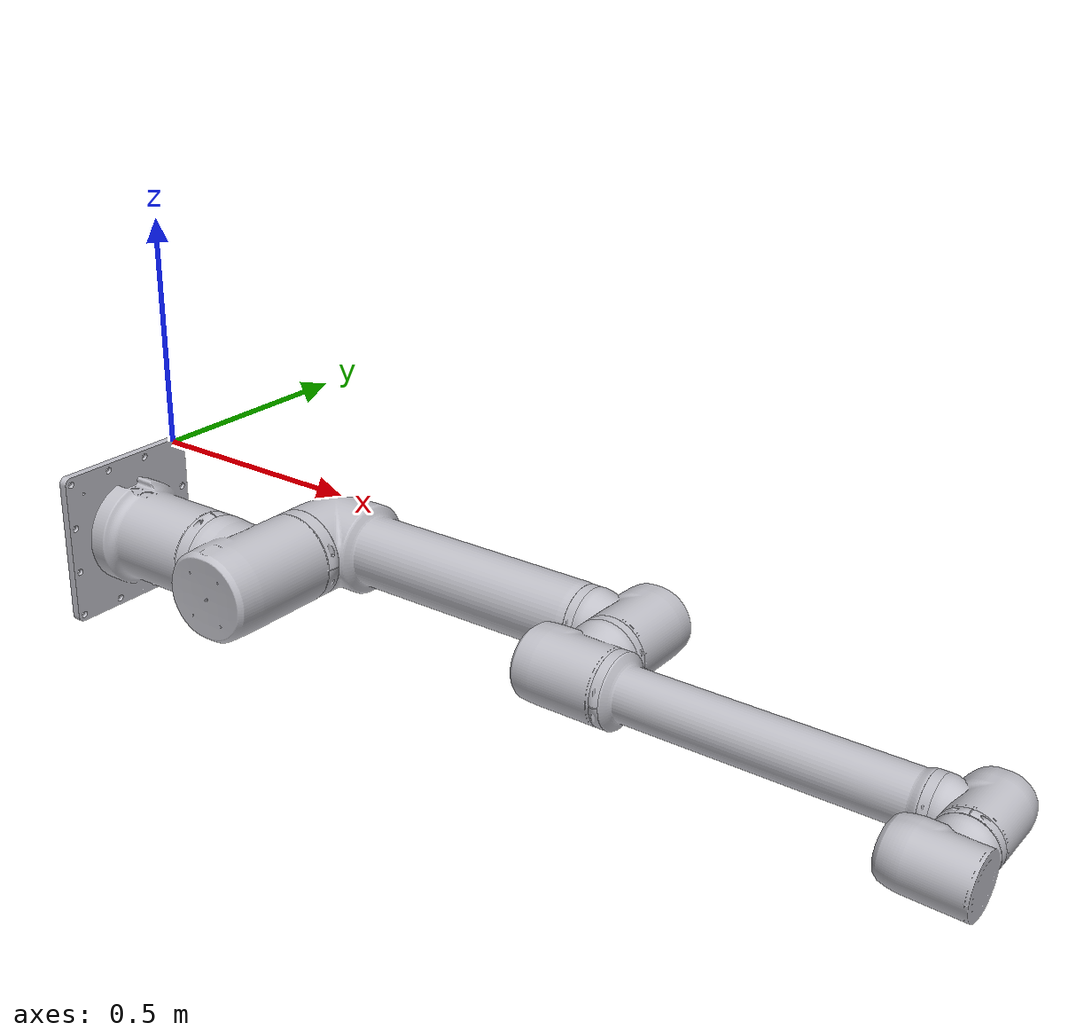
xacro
<?xml version="1.0" ?>
<robot name="mobile_robco" xmlns:xacro="http://www.ros.org/wiki/xacro" >
  <xacro:macro name="robco_xl" params="">

    <!-- Arm Links -->
    <link name="BD193_customer_v1_1">
      <inertial>
        <origin xyz="0.11086093890617746 -0.14999883865839964 -0.15049475459763317" rpy="0 0 0"/>
        <mass value="0.01"/>
        <inertia ixx="0.568297" iyy="0.80608" izz="0.810001" ixy="9e-06" iyz="-9.1e-05" ixz="-0.00257"/>
      </inertial>
      <visual>
        <origin xyz="-0.080904 -0.151068 -0.934327" rpy="0 0 0"/>
        <geometry>
          <mesh filename="package://mobile_robco_description/meshes/arm/BD193_customer_v1_1.stl" scale="0.001 0.001 0.001"/>
        </geometry>
        <material name="silver"/>
      </visual>
      <collision>
        <origin xyz="-0.080904 -0.151068 -0.934327" rpy="0 0 0"/>
        <geometry>
          <mesh filename="package://mobile_robco_description/meshes/arm/BD193_customer_v1_1.stl" scale="0.001 0.001 0.001"/>
        </geometry>
      </collision>
    </link>

    <link name="C193_v1_1">
      <inertial>
        <origin xyz="0.015200084341211284 -3.680834741773796e-07 -2.793969402503649e-07" rpy="0 0 0"/>
        <mass value="0.01"/>
        <inertia ixx="0.020057" iyy="0.010324" izz="0.010197" ixy="0.0" iyz="-5.4e-05" ixz="0.0"/>
      </inertial>
      <visual>
        <origin xyz="-0.337184 -0.001068 -0.784327" rpy="0 0 0"/>
        <geometry>
          <mesh filename="package://mobile_robco_description/meshes/arm/C193_v1_1.stl" scale="0.001 0.001 0.001"/>
        </geometry>
        <material name="silver"/>
      </visual>
      <collision>
        <origin xyz="-0.337184 -0.001068 -0.784327" rpy="0 0 0"/>
        <geometry>
          <mesh filename="package://mobile_robco_description/meshes/arm/C193_v1_1.stl" scale="0.001 0.001 0.001"/>
        </geometry>
      </collision>
    </link>

    <link name="D193_customer_v1_1">
      <inertial>
        <origin xyz="0.10298077716574155 -2.428876458104943e-07 0.015448294912491889" rpy="0 0 0"/>
        <mass value="0.01"/>
        <inertia ixx="0.539442" iyy="0.611028" izz="0.407083" ixy="2e-06" iyz="-8e-06" ixz="-0.005581"/>
      </inertial>
      <visual>
        <origin xyz="-0.367584 -0.001068 -0.784327" rpy="0 0 0"/>
        <geometry>
          <mesh filename="package://mobile_robco_description/meshes/arm/D193_customer_v1_1.stl" scale="0.001 0.001 0.001"/>
        </geometry>
        <material name="silver"/>
      </visual>
      <collision>
        <origin xyz="-0.367584 -0.001068 -0.784327" rpy="0 0 0"/>
        <geometry>
          <mesh filename="package://mobile_robco_description/meshes/arm/D193_customer_v1_1.stl" scale="0.001 0.001 0.001"/>
        </geometry>
      </collision>
    </link>

    <link name="C193_v1__1__1">
      <inertial>
        <origin xyz="-4.3628065271583694e-08 -3.6808345936999685e-07 -0.01520015142763309" rpy="0 0 0"/>
        <mass value="0.01"/>
        <inertia ixx="0.010197" iyy="0.010324" izz="0.020057" ixy="5.4e-05" iyz="0.0" ixz="-0.0"/>
      </inertial>
      <visual>
        <origin xyz="-0.487084 -0.001068 -0.681727" rpy="0 0 0"/>
        <geometry>
          <mesh filename="package://mobile_robco_description/meshes/arm/C193_v1__1__1.stl" scale="0.001 0.001 0.001"/>
        </geometry>
        <material name="silver"/>
      </visual>
      <collision>
        <origin xyz="-0.487084 -0.001068 -0.681727" rpy="0 0 0"/>
        <geometry>
          <mesh filename="package://mobile_robco_description/meshes/arm/C193_v1__1__1.stl" scale="0.001 0.001 0.001"/>
        </geometry>
      </collision>
    </link>

    <link name="L193_650_customer_v1_1">
      <inertial>
        <origin xyz="-1.6859656837286963e-08 0.2244674829954521 -0.08982077771376107" rpy="0 0 0"/>
        <mass value="0.01"/>
        <inertia ixx="3.380256" iyy="0.250245" izz="3.345006" ixy="-1e-06" iyz="0.136792" ixz="0.0"/>
      </inertial>
      <visual>
        <origin xyz="-0.487084 -0.001068 -0.651327" rpy="0 0 0"/>
        <geometry>
          <mesh filename="package://mobile_robco_description/meshes/arm/L193_650_customer_v1_1.stl" scale="0.001 0.001 0.001"/>
        </geometry>
        <material name="silver"/>
      </visual>
      <collision>
        <origin xyz="-0.487084 -0.001068 -0.651327" rpy="0 0 0"/>
        <geometry>
          <mesh filename="package://mobile_robco_description/meshes/arm/L193_650_customer_v1_1.stl" scale="0.001 0.001 0.001"/>
        </geometry>
      </collision>
    </link>

    <link name="C148_v1__1__1">
      <inertial>
        <origin xyz="-4.362867545015803e-08 0.010000445052072982 -2.793975094617096e-07" rpy="0 0 0"/>
        <mass value="0.01"/>
        <inertia ixx="0.002085" iyy="0.004128" izz="0.002114" ixy="-0.0" iyz="-0.0" ixz="1.8e-05"/>
      </inertial>
      <visual>
        <origin xyz="-0.487084 -0.640067 -0.551827" rpy="0 0 0"/>
        <geometry>
          <mesh filename="package://mobile_robco_description/meshes/arm/C148_v1__1__1.stl" scale="0.001 0.001 0.001"/>
        </geometry>
        <material name="silver"/>
      </visual>
      <collision>
        <origin xyz="-0.487084 -0.640067 -0.551827" rpy="0 0 0"/>
        <geometry>
          <mesh filename="package://mobile_robco_description/meshes/arm/C148_v1__1__1.stl" scale="0.001 0.001 0.001"/>
        </geometry>
      </collision>
    </link>

    <link name="D148_customer_v3_1">
      <inertial>
        <origin xyz="-1.3077764832170047e-07 0.08184841458206737 -0.00905243278253931" rpy="0 0 0"/>
        <mass value="0.01"/>
        <inertia ixx="0.12833" iyy="0.11191" izz="0.09299" ixy="0.0" iyz="0.000106" ixz="-0.0"/>
      </inertial>
      <visual>
        <origin xyz="-0.487084 -0.660067 -0.551827" rpy="0 0 0"/>
        <geometry>
          <mesh filename="package://mobile_robco_description/meshes/arm/D148_customer_v3_1.stl" scale="0.001 0.001 0.001"/>
        </geometry>
        <material name="silver"/>
      </visual>
      <collision>
        <origin xyz="-0.487084 -0.660067 -0.551827" rpy="0 0 0"/>
        <geometry>
          <mesh filename="package://mobile_robco_description/meshes/arm/D148_customer_v3_1.stl" scale="0.001 0.001 0.001"/>
        </geometry>
      </collision>
    </link>

    <link name="C148_v1_1">
      <inertial>
        <origin xyz="-4.3628775647786e-08 -3.8908754351751895e-07 0.009999753129409816" rpy="0 0 0"/>
        <mass value="0.01"/>
        <inertia ixx="0.002085" iyy="0.002114" izz="0.004128" ixy="1.8e-05" iyz="0.0" ixz="0.0"/>
      </inertial>
      <visual>
        <origin xyz="-0.487084 -0.753066 -0.625817" rpy="0 0 0"/>
        <geometry>
          <mesh filename="package://mobile_robco_description/meshes/arm/C148_v1_1.stl" scale="0.001 0.001 0.001"/>
        </geometry>
        <material name="silver"/>
      </visual>
      <collision>
        <origin xyz="-0.487084 -0.753066 -0.625817" rpy="0 0 0"/>
        <geometry>
          <mesh filename="package://mobile_robco_description/meshes/arm/C148_v1_1.stl" scale="0.001 0.001 0.001"/>
        </geometry>
      </collision>
    </link>

    <link name="D148_customer_v3__1__1">
      <inertial>
        <origin xyz="-0.00905219701372556 -4.76236378221806e-07 0.08184765760542778" rpy="0 0 0"/>
        <mass value="0.01"/>
        <inertia ixx="0.09299" iyy="0.12833" izz="0.11191" ixy="-0.0" iyz="0.0" ixz="0.000106"/>
      </inertial>
      <visual>
        <origin xyz="-0.487084 -0.753066 -0.645817" rpy="0 0 0"/>
        <geometry>
          <mesh filename="package://mobile_robco_description/meshes/arm/D148_customer_v3__1__1.stl" scale="0.001 0.001 0.001"/>
        </geometry>
        <material name="silver"/>
      </visual>
      <collision>
        <origin xyz="-0.487084 -0.753066 -0.645817" rpy="0 0 0"/>
        <geometry>
          <mesh filename="package://mobile_robco_description/meshes/arm/D148_customer_v3__1__1.stl" scale="0.001 0.001 0.001"/>
        </geometry>
      </collision>
    </link>

    <link name="C148_v1__2__1">
      <inertial>
        <origin xyz="0.009999923844242087 -3.890873916390092e-07 -1.4606422626961546e-07" rpy="0 0 0"/>
        <mass value="0.01"/>
        <inertia ixx="0.004128" iyy="0.002085" izz="0.002114" ixy="0.0" iyz="-1.8e-05" ixz="0.0"/>
      </inertial>
      <visual>
        <origin xyz="-0.561074 -0.753066 -0.738815" rpy="0 0 0"/>
        <geometry>
          <mesh filename="package://mobile_robco_description/meshes/arm/C148_v1__2__1.stl" scale="0.001 0.001 0.001"/>
        </geometry>
        <material name="silver"/>
      </visual>
      <collision>
        <origin xyz="-0.561074 -0.753066 -0.738815" rpy="0 0 0"/>
        <geometry>
          <mesh filename="package://mobile_robco_description/meshes/arm/C148_v1__2__1.stl" scale="0.001 0.001 0.001"/>
        </geometry>
      </collision>
    </link>

    <link name="I148-600_customer_v1_1">
      <inertial>
        <origin xyz="0.26278201696322756 -5.503622635405492e-07 -9.307806403402452e-08" rpy="0 0 0"/>
        <mass value="0.01"/>
        <inertia ixx="0.0292" iyy="0.931257" izz="0.931257" ixy="-1e-06" iyz="-0.0" ixz="0.0"/>
      </inertial>
      <visual>
        <origin xyz="-0.581074 -0.753066 -0.738815" rpy="0 0 0"/>
        <geometry>
          <mesh filename="package://mobile_robco_description/meshes/arm/I148_600_customer_v1_1.stl" scale="0.001 0.001 0.001"/>
        </geometry>
        <material name="silver"/>
      </visual>
      <collision>
        <origin xyz="-0.581074 -0.753066 -0.738815" rpy="0 0 0"/>
        <geometry>
          <mesh filename="package://mobile_robco_description/meshes/arm/I148_600_customer_v1_1.stl" scale="0.001 0.001 0.001"/>
        </geometry>
      </collision>
    </link>

    <link name="C116_v1_1">
      <inertial>
        <origin xyz="0.008999964542216965 -3.890870051703743e-07 -1.4606425124963351e-07" rpy="0 0 0"/>
        <mass value="0.01"/>
        <inertia ixx="0.001452" iyy="0.000725" izz="0.000758" ixy="-0.0" iyz="-8e-06" ixz="-0.0"/>
      </inertial>
      <visual>
        <origin xyz="-1.160574 -0.753066 -0.738815" rpy="0 0 0"/>
        <geometry>
          <mesh filename="package://mobile_robco_description/meshes/arm/C116_v1_1.stl" scale="0.001 0.001 0.001"/>
        </geometry>
        <material name="silver"/>
      </visual>
      <collision>
        <origin xyz="-1.160574 -0.753066 -0.738815" rpy="0 0 0"/>
        <geometry>
          <mesh filename="package://mobile_robco_description/meshes/arm/C116_v1_1.stl" scale="0.001 0.001 0.001"/>
        </geometry>
      </collision>
    </link>

    <link name="D116_customer_v1_1">
      <inertial>
        <origin xyz="0.06352197108840985 -3.933336560901779e-07 -0.012655163639839428" rpy="0 0 0"/>
        <mass value="0.01"/>
        <inertia ixx="0.043278" iyy="0.048321" izz="0.029984" ixy="-0.0" iyz="-0.0" ixz="-5e-05"/>
      </inertial>
      <visual>
        <origin xyz="-1.178574 -0.753066 -0.738815" rpy="0 0 0"/>
        <geometry>
          <mesh filename="package://mobile_robco_description/meshes/arm/D116_customer_v1_1.stl" scale="0.001 0.001 0.001"/>
        </geometry>
        <material name="silver"/>
      </visual>
      <collision>
        <origin xyz="-1.178574 -0.753066 -0.738815" rpy="0 0 0"/>
        <geometry>
          <mesh filename="package://mobile_robco_description/meshes/arm/D116_customer_v1_1.stl" scale="0.001 0.001 0.001"/>
        </geometry>
      </collision>
    </link>

    <link name="C116_v1__1__1">
      <inertial>
        <origin xyz="-4.362886030229163e-08 -3.890868733869013e-07 0.008999845764856462" rpy="0 0 0"/>
        <mass value="0.01"/>
        <inertia ixx="0.000758" iyy="0.000725" izz="0.001452" ixy="-8e-06" iyz="0.0" ixz="0.0"/>
      </inertial>
      <visual>
        <origin xyz="-1.250574 -0.753066 -0.799015" rpy="0 0 0"/>
        <geometry>
          <mesh filename="package://mobile_robco_description/meshes/arm/C116_v1__1__1.stl" scale="0.001 0.001 0.001"/>
        </geometry>
        <material name="silver"/>
      </visual>
      <collision>
        <origin xyz="-1.250574 -0.753066 -0.799015" rpy="0 0 0"/>
        <geometry>
          <mesh filename="package://mobile_robco_description/meshes/arm/C116_v1__1__1.stl" scale="0.001 0.001 0.001"/>
        </geometry>
      </collision>
    </link>

    <link name="D116_customer_v1_2">
      <inertial>
        <origin xyz="-0.00045617739445845016 -0.015625352365130993 0.06600157891356076" rpy="0 0 0"/>
        <mass value="0.01"/>
        <inertia ixx="0.044431" iyy="0.029421" izz="0.03944" ixy="-0.000438" iyz="0.000334" ixz="1.3e-05"/>
      </inertial>
      <visual>
        <origin xyz="0 0 0" rpy="0 0 0"/>
        <geometry>
          <mesh filename="package://mobile_robco_description/meshes/arm/base_link.stl" scale="0.001 0.001 0.001"/>
        </geometry>
        <material name="silver"/>
      </visual>
      <collision>
        <origin xyz="0 0 0" rpy="0 0 0"/>
        <geometry>
          <mesh filename="package://mobile_robco_description/meshes/arm/base_link.stl" scale="0.001 0.001 0.001"/>
        </geometry>
      </collision>
    </link>

    <!-- Joints -->
    <joint name="Rigid_5" type="fixed">
      <origin xyz="0.25628 -0.15 -0.15" rpy="0 0 0"/>
      <parent link="BD193_customer_v1_1"/>
      <child link="C193_v1_1"/>
    </joint>

    <joint name="robco_joint_0" type="revolute">
      <origin xyz="0.0304 0.0 0.0" rpy="1.57 0 0"/>
      <parent link="C193_v1_1"/>
      <child link="D193_customer_v1_1"/>
      <axis xyz="1.0 0.0 0.0"/>
      <limit lower="${default_lower}" upper="${default_upper}" effort="1000" velocity="${default_velocity}" acceleration="${default_acceleration}"/>
    </joint>

    <joint name="Rigid_7" type="fixed">
      <origin xyz="0.1195 0.0 -0.1026" rpy="0 0 0"/>
      <parent link="D193_customer_v1_1"/>
      <child link="C193_v1__1__1"/>
    </joint>

    <joint name="robco_joint_1" type="revolute">
      <origin xyz="0.0 0.0 -0.0304" rpy="0 0 -1.5708"/>
      <parent link="C193_v1__1__1"/>
      <child link="L193_650_customer_v1_1"/>
      <axis xyz="0.0 -0.0 -1.0"/>
      <limit lower="${default_lower}" upper="${default_upper}" effort="1000" velocity="${default_velocity}" acceleration="${default_acceleration}"/>
    </joint>

    <joint name="Rigid_9" type="fixed">
      <origin xyz="0.0 0.638999 -0.0995" rpy="0 0 0"/>
      <parent link="L193_650_customer_v1_1"/>
      <child link="C148_v1__1__1"/>
    </joint>

    <joint name="Rigid_10" type="fixed">
      <origin xyz="0.0 0.02 0.0" rpy="0 0 0"/>
      <parent link="C148_v1__1__1"/>
      <child link="D148_customer_v3_1"/>
      <axis xyz="-0.0 1.0 -0.0"/>
    </joint>

    <joint name="Rigid_11" type="fixed">
      <origin xyz="0.0 0.092999 0.07399" rpy="0 0 0"/>
      <parent link="D148_customer_v3_1"/>
      <child link="C148_v1_1"/>
    </joint>

    <joint name="robco_joint_2" type="revolute">
      <origin xyz="0.0 0.0 0.02" rpy="0 0 1.5708"/>
      <parent link="C148_v1_1"/>
      <child link="D148_customer_v3__1__1"/>
      <axis xyz="-0.0 0.0 1.0"/>
      <limit lower="${default_lower}" upper="${default_upper}" effort="1000" velocity="${default_velocity}" acceleration="${default_acceleration}"/>
    </joint>

    <joint name="Rigid_13" type="fixed">
      <origin xyz="0.07399 0.0 0.092998" rpy="0 0 0"/>
      <parent link="D148_customer_v3__1__1"/>
      <child link="C148_v1__2__1"/>
    </joint>

    <joint name="robco_joint_3" type="revolute">
      <origin xyz="0.02 0.0 0.0" rpy="0 0 0"/>
      <parent link="C148_v1__2__1"/>
      <child link="I148-600_customer_v1_1"/>
      <axis xyz="1.0 0.0 0.0"/>
      <limit lower="${default_lower}" upper="${default_upper}" effort="1000" velocity="${default_velocity}" acceleration="${default_acceleration}"/>
    </joint>

    <joint name="Rigid_15" type="fixed">
      <origin xyz="0.5795 0.0 0.0" rpy="0 0 0"/>
      <parent link="I148-600_customer_v1_1"/>
      <child link="C116_v1_1"/>
    </joint>

    <joint name="Rigid_16" type="fixed">
      <origin xyz="0.018 0.0 0.0" rpy="0 0 0"/>
      <parent link="C116_v1_1"/>
      <child link="D116_customer_v1_1"/>
    </joint>

    <joint name="robco_joint_4" type="revolute">
      <origin xyz="0.072 0.0 0.0602" rpy="0 0 1.5708"/>
      <parent link="D116_customer_v1_1"/>
      <child link="C116_v1__1__1"/>
      <axis xyz="-0.0 0.0 1.0"/>
      <limit lower="${default_lower}" upper="${default_upper}" effort="1000" velocity="${default_velocity}" acceleration="${default_acceleration}"/>
    </joint>

    <joint name="Rigid_20" type="fixed">
      <origin xyz="0.0 0.0 0.018" rpy="0 0 3.14159265359"/>
      <parent link="C116_v1__1__1"/>
      <child link="D116_customer_v1_2"/>
    </joint>

  </xacro:macro>

  <!-- Invoke the Arm Macro -->
  <xacro:robco_xl/>
</robot>
